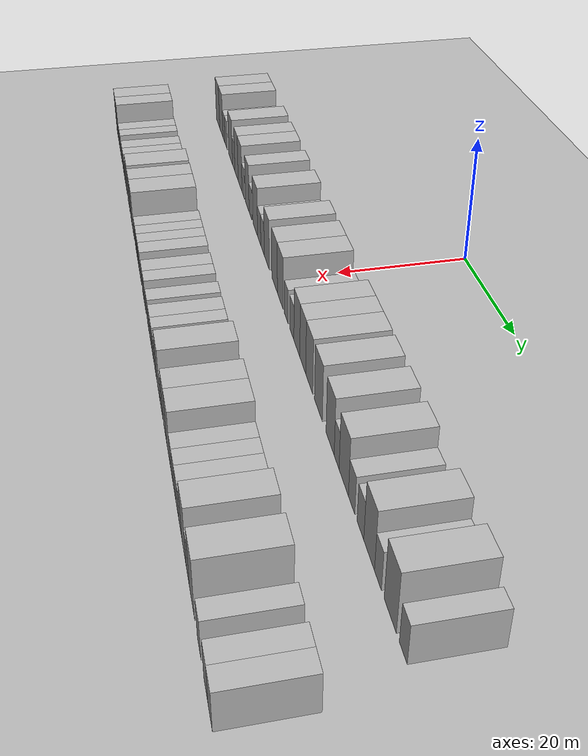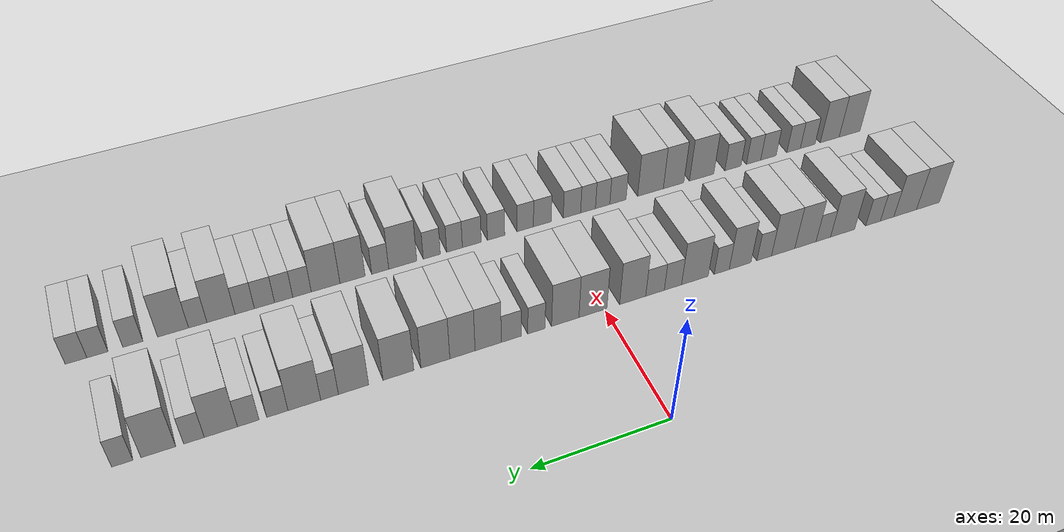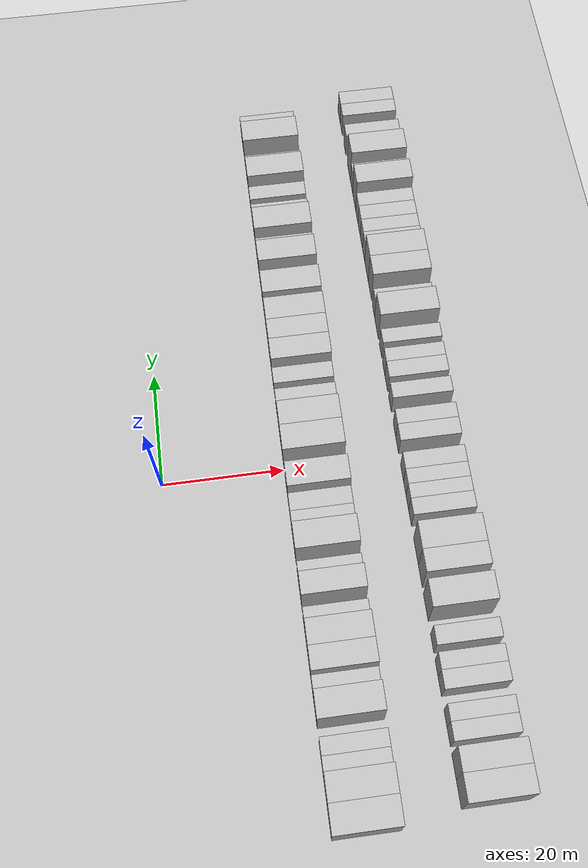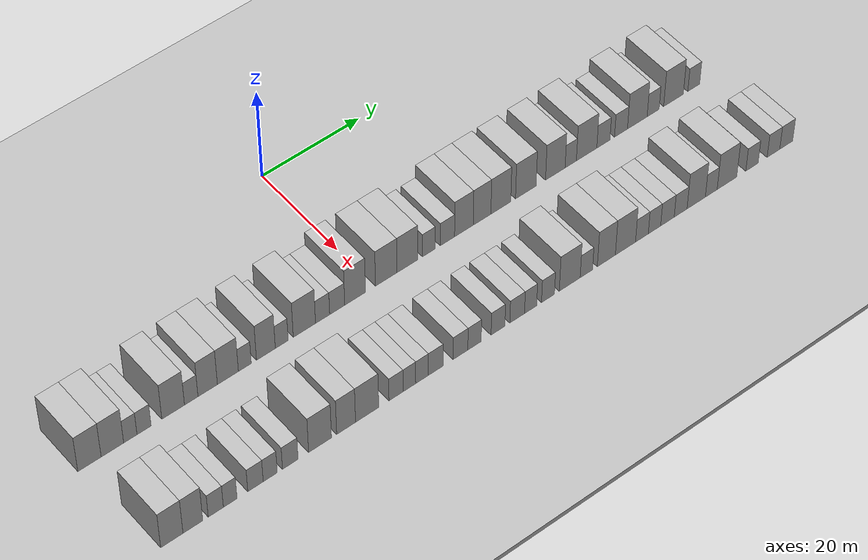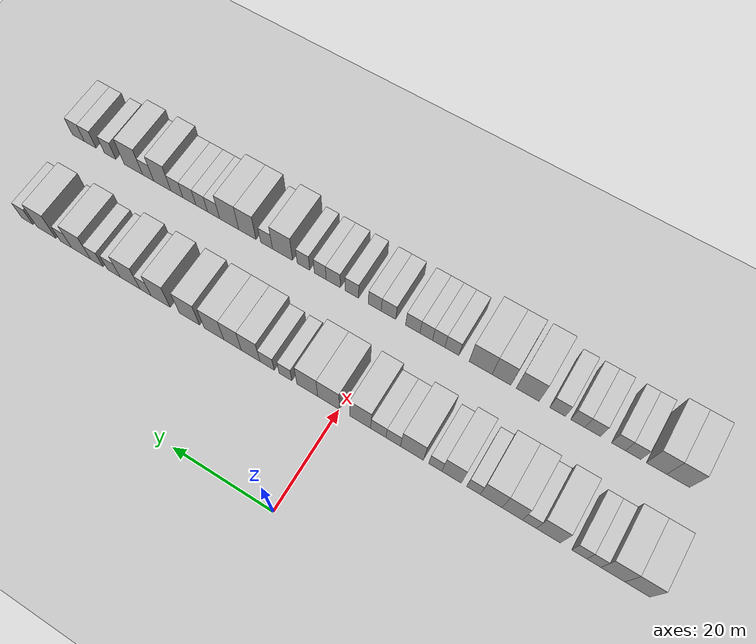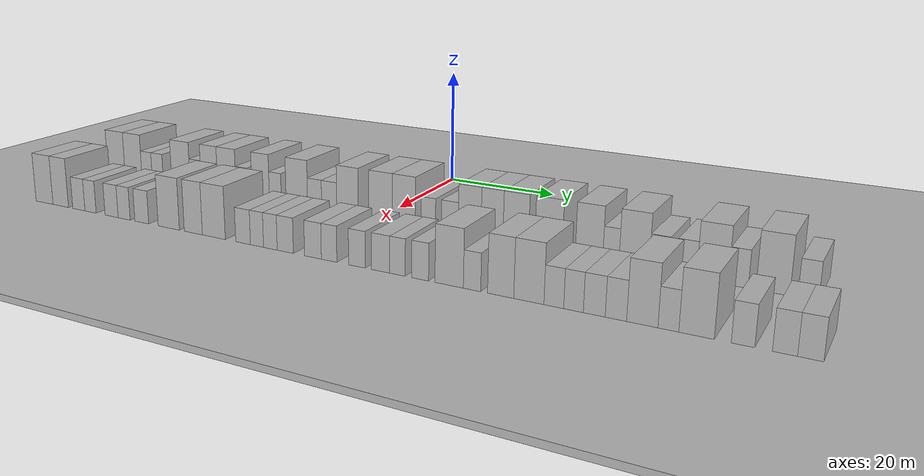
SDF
<sdf version="1.6">
 <world name="default">
  <include><name>ground_plane_1</name><uri>model://HANNAS_ground_plane</uri></include>
  <include>
   <name>ground_plane_2</name>
   <uri>model://HANNAS_ground_plane</uri>
   <pose>100 0 0  0 0 0</pose>
  </include>
  <model name="building_37">
   <static>1</static>
   <pose>25.0000 -54.9626 0 0.000000 0.000000 0.000000</pose>
   <link name="link">
    <pose>0 0 4.50 0 0 0</pose>
    <collision name="collision"><geometry><box><size>10.0000 4.2796 9.0000</size></box></geometry></collision>
    <visual name="visual">
     <cast_shadows>0</cast_shadows>
     <geometry><box><size>10.0000 4.2796 9.0000</size></box></geometry>
     <material>
      <script>
       <uri>model://HANNAS_wall/materials/scripts</uri>
       <uri>model://HANNAS_wall/materials/textures</uri>
       <name>vrc/HANNAS_wall</name>
      </script>
     </material>
    </visual>
   </link>
  </model>
  <model name="building_38">
   <static>1</static>
   <pose>25.0000 -50.7475 0 0.000000 0.000000 0.000000</pose>
   <link name="link">
    <pose>0 0 4.50 0 0 0</pose>
    <collision name="collision"><geometry><box><size>10.0000 4.1506 9.0000</size></box></geometry></collision>
    <visual name="visual">
     <cast_shadows>0</cast_shadows>
     <geometry><box><size>10.0000 4.1506 9.0000</size></box></geometry>
     <material>
      <script>
       <uri>model://HANNAS_wall/materials/scripts</uri>
       <uri>model://HANNAS_wall/materials/textures</uri>
       <name>vrc/HANNAS_wall</name>
      </script>
     </material>
    </visual>
   </link>
  </model>
  <model name="building_39">
   <static>1</static>
   <pose>25.0000 -47.4356 0 0.000000 0.000000 0.000000</pose>
   <link name="link">
    <pose>0 0 3.00 0 0 0</pose>
    <collision name="collision"><geometry><box><size>10.0000 2.4733 6.0000</size></box></geometry></collision>
    <visual name="visual">
     <cast_shadows>0</cast_shadows>
     <geometry><box><size>10.0000 2.4733 6.0000</size></box></geometry>
     <material>
      <script>
       <uri>model://HANNAS_wall/materials/scripts</uri>
       <uri>model://HANNAS_wall/materials/textures</uri>
       <name>vrc/HANNAS_wall</name>
      </script>
     </material>
    </visual>
   </link>
  </model>
  <model name="building_40">
   <static>1</static>
   <pose>25.0000 -44.8819 0 0.000000 0.000000 0.000000</pose>
   <link name="link">
    <pose>0 0 3.00 0 0 0</pose>
    <collision name="collision"><geometry><box><size>10.0000 2.6341 6.0000</size></box></geometry></collision>
    <visual name="visual">
     <cast_shadows>0</cast_shadows>
     <geometry><box><size>10.0000 2.6341 6.0000</size></box></geometry>
     <material>
      <script>
       <uri>model://HANNAS_wall/materials/scripts</uri>
       <uri>model://HANNAS_wall/materials/textures</uri>
       <name>vrc/HANNAS_wall</name>
      </script>
     </material>
    </visual>
   </link>
  </model>
  <model name="building_41">
   <static>1</static>
   <pose>25.0000 -39.4335 0 0.000000 0.000000 0.000000</pose>
   <link name="link">
    <pose>0 0 4.50 0 0 0</pose>
    <collision name="collision"><geometry><box><size>10.0000 4.2626 9.0000</size></box></geometry></collision>
    <visual name="visual">
     <cast_shadows>0</cast_shadows>
     <geometry><box><size>10.0000 4.2626 9.0000</size></box></geometry>
     <material>
      <script>
       <uri>model://HANNAS_wall/materials/scripts</uri>
       <uri>model://HANNAS_wall/materials/textures</uri>
       <name>vrc/HANNAS_wall</name>
      </script>
     </material>
    </visual>
   </link>
  </model>
  <model name="building_42">
   <static>1</static>
   <pose>25.0000 -36.0239 0 0.000000 0.000000 0.000000</pose>
   <link name="link">
    <pose>0 0 3.00 0 0 0</pose>
    <collision name="collision"><geometry><box><size>10.0000 2.5567 6.0000</size></box></geometry></collision>
    <visual name="visual">
     <cast_shadows>0</cast_shadows>
     <geometry><box><size>10.0000 2.5567 6.0000</size></box></geometry>
     <material>
      <script>
       <uri>model://HANNAS_wall/materials/scripts</uri>
       <uri>model://HANNAS_wall/materials/textures</uri>
       <name>vrc/HANNAS_wall</name>
      </script>
     </material>
    </visual>
   </link>
  </model>
  <model name="building_43">
   <static>1</static>
   <pose>25.0000 -32.8993 0 0.000000 0.000000 0.000000</pose>
   <link name="link">
    <pose>0 0 4.50 0 0 0</pose>
    <collision name="collision"><geometry><box><size>10.0000 3.6925 9.0000</size></box></geometry></collision>
    <visual name="visual">
     <cast_shadows>0</cast_shadows>
     <geometry><box><size>10.0000 3.6925 9.0000</size></box></geometry>
     <material>
      <script>
       <uri>model://HANNAS_wall/materials/scripts</uri>
       <uri>model://HANNAS_wall/materials/textures</uri>
       <name>vrc/HANNAS_wall</name>
      </script>
     </material>
    </visual>
   </link>
  </model>
  <model name="building_44">
   <static>1</static>
   <pose>25.0000 -29.0446 0 0.000000 0.000000 0.000000</pose>
   <link name="link">
    <pose>0 0 4.50 0 0 0</pose>
    <collision name="collision"><geometry><box><size>10.0000 4.0168 9.0000</size></box></geometry></collision>
    <visual name="visual">
     <cast_shadows>0</cast_shadows>
     <geometry><box><size>10.0000 4.0168 9.0000</size></box></geometry>
     <material>
      <script>
       <uri>model://HANNAS_wall/materials/scripts</uri>
       <uri>model://HANNAS_wall/materials/textures</uri>
       <name>vrc/HANNAS_wall</name>
      </script>
     </material>
    </visual>
   </link>
  </model>
  <model name="building_45">
   <static>1</static>
   <pose>25.0000 -25.7972 0 0.000000 0.000000 0.000000</pose>
   <link name="link">
    <pose>0 0 3.00 0 0 0</pose>
    <collision name="collision"><geometry><box><size>10.0000 2.4780 6.0000</size></box></geometry></collision>
    <visual name="visual">
     <cast_shadows>0</cast_shadows>
     <geometry><box><size>10.0000 2.4780 6.0000</size></box></geometry>
     <material>
      <script>
       <uri>model://HANNAS_wall/materials/scripts</uri>
       <uri>model://HANNAS_wall/materials/textures</uri>
       <name>vrc/HANNAS_wall</name>
      </script>
     </material>
    </visual>
   </link>
  </model>
  <model name="building_46">
   <static>1</static>
   <pose>25.0000 -21.7308 0 0.000000 0.000000 0.000000</pose>
   <link name="link">
    <pose>0 0 4.50 0 0 0</pose>
    <collision name="collision"><geometry><box><size>10.0000 3.6547 9.0000</size></box></geometry></collision>
    <visual name="visual">
     <cast_shadows>0</cast_shadows>
     <geometry><box><size>10.0000 3.6547 9.0000</size></box></geometry>
     <material>
      <script>
       <uri>model://HANNAS_wall/materials/scripts</uri>
       <uri>model://HANNAS_wall/materials/textures</uri>
       <name>vrc/HANNAS_wall</name>
      </script>
     </material>
    </visual>
   </link>
  </model>
  <model name="building_47">
   <static>1</static>
   <pose>25.0000 -18.6545 0 0.000000 0.000000 0.000000</pose>
   <link name="link">
    <pose>0 0 3.00 0 0 0</pose>
    <collision name="collision"><geometry><box><size>10.0000 2.4978 6.0000</size></box></geometry></collision>
    <visual name="visual">
     <cast_shadows>0</cast_shadows>
     <geometry><box><size>10.0000 2.4978 6.0000</size></box></geometry>
     <material>
      <script>
       <uri>model://HANNAS_wall/materials/scripts</uri>
       <uri>model://HANNAS_wall/materials/textures</uri>
       <name>vrc/HANNAS_wall</name>
      </script>
     </material>
    </visual>
   </link>
  </model>
  <model name="building_48">
   <static>1</static>
   <pose>25.0000 -14.2220 0 0.000000 0.000000 0.000000</pose>
   <link name="link">
    <pose>0 0 4.50 0 0 0</pose>
    <collision name="collision"><geometry><box><size>10.0000 4.3672 9.0000</size></box></geometry></collision>
    <visual name="visual">
     <cast_shadows>0</cast_shadows>
     <geometry><box><size>10.0000 4.3672 9.0000</size></box></geometry>
     <material>
      <script>
       <uri>model://HANNAS_wall/materials/scripts</uri>
       <uri>model://HANNAS_wall/materials/textures</uri>
       <name>vrc/HANNAS_wall</name>
      </script>
     </material>
    </visual>
   </link>
  </model>
  <model name="building_49">
   <static>1</static>
   <pose>25.0000 -10.6399 0 0.000000 0.000000 0.000000</pose>
   <link name="link">
    <pose>0 0 3.00 0 0 0</pose>
    <collision name="collision"><geometry><box><size>10.0000 2.7971 6.0000</size></box></geometry></collision>
    <visual name="visual">
     <cast_shadows>0</cast_shadows>
     <geometry><box><size>10.0000 2.7971 6.0000</size></box></geometry>
     <material>
      <script>
       <uri>model://HANNAS_wall/materials/scripts</uri>
       <uri>model://HANNAS_wall/materials/textures</uri>
       <name>vrc/HANNAS_wall</name>
      </script>
     </material>
    </visual>
   </link>
  </model>
  <model name="building_50">
   <static>1</static>
   <pose>25.0000 -7.7481 0 0.000000 0.000000 0.000000</pose>
   <link name="link">
    <pose>0 0 3.00 0 0 0</pose>
    <collision name="collision"><geometry><box><size>10.0000 2.9864 6.0000</size></box></geometry></collision>
    <visual name="visual">
     <cast_shadows>0</cast_shadows>
     <geometry><box><size>10.0000 2.9864 6.0000</size></box></geometry>
     <material>
      <script>
       <uri>model://HANNAS_wall/materials/scripts</uri>
       <uri>model://HANNAS_wall/materials/textures</uri>
       <name>vrc/HANNAS_wall</name>
      </script>
     </material>
    </visual>
   </link>
  </model>
  <model name="building_51">
   <static>1</static>
   <pose>25.0000 -4.1817 0 0.000000 0.000000 0.000000</pose>
   <link name="link">
    <pose>0 0 4.50 0 0 0</pose>
    <collision name="collision"><geometry><box><size>10.0000 4.1463 9.0000</size></box></geometry></collision>
    <visual name="visual">
     <cast_shadows>0</cast_shadows>
     <geometry><box><size>10.0000 4.1463 9.0000</size></box></geometry>
     <material>
      <script>
       <uri>model://HANNAS_wall/materials/scripts</uri>
       <uri>model://HANNAS_wall/materials/textures</uri>
       <name>vrc/HANNAS_wall</name>
      </script>
     </material>
    </visual>
   </link>
  </model>
  <model name="building_52">
   <static>1</static>
   <pose>25.0000 2.0636 0 0.000000 0.000000 0.000000</pose>
   <link name="link">
    <pose>0 0 4.50 0 0 0</pose>
    <collision name="collision"><geometry><box><size>10.0000 4.3444 9.0000</size></box></geometry></collision>
    <visual name="visual">
     <cast_shadows>0</cast_shadows>
     <geometry><box><size>10.0000 4.3444 9.0000</size></box></geometry>
     <material>
      <script>
       <uri>model://HANNAS_wall/materials/scripts</uri>
       <uri>model://HANNAS_wall/materials/textures</uri>
       <name>vrc/HANNAS_wall</name>
      </script>
     </material>
    </visual>
   </link>
  </model>
  <model name="building_53">
   <static>1</static>
   <pose>25.0000 6.3331 0 0.000000 0.000000 0.000000</pose>
   <link name="link">
    <pose>0 0 4.50 0 0 0</pose>
    <collision name="collision"><geometry><box><size>10.0000 4.1945 9.0000</size></box></geometry></collision>
    <visual name="visual">
     <cast_shadows>0</cast_shadows>
     <geometry><box><size>10.0000 4.1945 9.0000</size></box></geometry>
     <material>
      <script>
       <uri>model://HANNAS_wall/materials/scripts</uri>
       <uri>model://HANNAS_wall/materials/textures</uri>
       <name>vrc/HANNAS_wall</name>
      </script>
     </material>
    </visual>
   </link>
  </model>
  <model name="building_54">
   <static>1</static>
   <pose>25.0000 10.7338 0 0.000000 0.000000 0.000000</pose>
   <link name="link">
    <pose>0 0 3.00 0 0 0</pose>
    <collision name="collision"><geometry><box><size>10.0000 2.6070 6.0000</size></box></geometry></collision>
    <visual name="visual">
     <cast_shadows>0</cast_shadows>
     <geometry><box><size>10.0000 2.6070 6.0000</size></box></geometry>
     <material>
      <script>
       <uri>model://HANNAS_wall/materials/scripts</uri>
       <uri>model://HANNAS_wall/materials/textures</uri>
       <name>vrc/HANNAS_wall</name>
      </script>
     </material>
    </visual>
   </link>
  </model>
  <model name="building_55">
   <static>1</static>
   <pose>25.0000 14.5143 0 0.000000 0.000000 0.000000</pose>
   <link name="link">
    <pose>0 0 3.00 0 0 0</pose>
    <collision name="collision"><geometry><box><size>10.0000 2.9539 6.0000</size></box></geometry></collision>
    <visual name="visual">
     <cast_shadows>0</cast_shadows>
     <geometry><box><size>10.0000 2.9539 6.0000</size></box></geometry>
     <material>
      <script>
       <uri>model://HANNAS_wall/materials/scripts</uri>
       <uri>model://HANNAS_wall/materials/textures</uri>
       <name>vrc/HANNAS_wall</name>
      </script>
     </material>
    </visual>
   </link>
  </model>
  <model name="building_56">
   <static>1</static>
   <pose>25.0000 17.9239 0 0.000000 0.000000 0.000000</pose>
   <link name="link">
    <pose>0 0 4.50 0 0 0</pose>
    <collision name="collision"><geometry><box><size>10.0000 3.8653 9.0000</size></box></geometry></collision>
    <visual name="visual">
     <cast_shadows>0</cast_shadows>
     <geometry><box><size>10.0000 3.8653 9.0000</size></box></geometry>
     <material>
      <script>
       <uri>model://HANNAS_wall/materials/scripts</uri>
       <uri>model://HANNAS_wall/materials/textures</uri>
       <name>vrc/HANNAS_wall</name>
      </script>
     </material>
    </visual>
   </link>
  </model>
  <model name="building_57">
   <static>1</static>
   <pose>25.0000 21.6936 0 0.000000 0.000000 0.000000</pose>
   <link name="link">
    <pose>0 0 4.50 0 0 0</pose>
    <collision name="collision"><geometry><box><size>10.0000 3.6740 9.0000</size></box></geometry></collision>
    <visual name="visual">
     <cast_shadows>0</cast_shadows>
     <geometry><box><size>10.0000 3.6740 9.0000</size></box></geometry>
     <material>
      <script>
       <uri>model://HANNAS_wall/materials/scripts</uri>
       <uri>model://HANNAS_wall/materials/textures</uri>
       <name>vrc/HANNAS_wall</name>
      </script>
     </material>
    </visual>
   </link>
  </model>
  <model name="building_58">
   <static>1</static>
   <pose>25.0000 25.6109 0 0.000000 0.000000 0.000000</pose>
   <link name="link">
    <pose>0 0 4.50 0 0 0</pose>
    <collision name="collision"><geometry><box><size>10.0000 4.1607 9.0000</size></box></geometry></collision>
    <visual name="visual">
     <cast_shadows>0</cast_shadows>
     <geometry><box><size>10.0000 4.1607 9.0000</size></box></geometry>
     <material>
      <script>
       <uri>model://HANNAS_wall/materials/scripts</uri>
       <uri>model://HANNAS_wall/materials/textures</uri>
       <name>vrc/HANNAS_wall</name>
      </script>
     </material>
    </visual>
   </link>
  </model>
  <model name="building_59">
   <static>1</static>
   <pose>25.0000 30.8675 0 0.000000 0.000000 0.000000</pose>
   <link name="link">
    <pose>0 0 4.50 0 0 0</pose>
    <collision name="collision"><geometry><box><size>10.0000 4.3525 9.0000</size></box></geometry></collision>
    <visual name="visual">
     <cast_shadows>0</cast_shadows>
     <geometry><box><size>10.0000 4.3525 9.0000</size></box></geometry>
     <material>
      <script>
       <uri>model://HANNAS_wall/materials/scripts</uri>
       <uri>model://HANNAS_wall/materials/textures</uri>
       <name>vrc/HANNAS_wall</name>
      </script>
     </material>
    </visual>
   </link>
  </model>
  <model name="building_60">
   <static>1</static>
   <pose>25.0000 37.1327 0 0.000000 0.000000 0.000000</pose>
   <link name="link">
    <pose>0 0 4.50 0 0 0</pose>
    <collision name="collision"><geometry><box><size>10.0000 4.1779 9.0000</size></box></geometry></collision>
    <visual name="visual">
     <cast_shadows>0</cast_shadows>
     <geometry><box><size>10.0000 4.1779 9.0000</size></box></geometry>
     <material>
      <script>
       <uri>model://HANNAS_wall/materials/scripts</uri>
       <uri>model://HANNAS_wall/materials/textures</uri>
       <name>vrc/HANNAS_wall</name>
      </script>
     </material>
    </visual>
   </link>
  </model>
  <model name="building_61">
   <static>1</static>
   <pose>25.0000 40.4304 0 0.000000 0.000000 0.000000</pose>
   <link name="link">
    <pose>0 0 3.00 0 0 0</pose>
    <collision name="collision"><geometry><box><size>10.0000 2.4174 6.0000</size></box></geometry></collision>
    <visual name="visual">
     <cast_shadows>0</cast_shadows>
     <geometry><box><size>10.0000 2.4174 6.0000</size></box></geometry>
     <material>
      <script>
       <uri>model://HANNAS_wall/materials/scripts</uri>
       <uri>model://HANNAS_wall/materials/textures</uri>
       <name>vrc/HANNAS_wall</name>
      </script>
     </material>
    </visual>
   </link>
  </model>
  <model name="building_62">
   <static>1</static>
   <pose>25.0000 43.8453 0 0.000000 0.000000 0.000000</pose>
   <link name="link">
    <pose>0 0 4.50 0 0 0</pose>
    <collision name="collision"><geometry><box><size>10.0000 4.4126 9.0000</size></box></geometry></collision>
    <visual name="visual">
     <cast_shadows>0</cast_shadows>
     <geometry><box><size>10.0000 4.4126 9.0000</size></box></geometry>
     <material>
      <script>
       <uri>model://HANNAS_wall/materials/scripts</uri>
       <uri>model://HANNAS_wall/materials/textures</uri>
       <name>vrc/HANNAS_wall</name>
      </script>
     </material>
    </visual>
   </link>
  </model>
  <model name="building_63">
   <static>1</static>
   <pose>25.0000 47.4727 0 0.000000 0.000000 0.000000</pose>
   <link name="link">
    <pose>0 0 3.00 0 0 0</pose>
    <collision name="collision"><geometry><box><size>10.0000 2.8422 6.0000</size></box></geometry></collision>
    <visual name="visual">
     <cast_shadows>0</cast_shadows>
     <geometry><box><size>10.0000 2.8422 6.0000</size></box></geometry>
     <material>
      <script>
       <uri>model://HANNAS_wall/materials/scripts</uri>
       <uri>model://HANNAS_wall/materials/textures</uri>
       <name>vrc/HANNAS_wall</name>
      </script>
     </material>
    </visual>
   </link>
  </model>
  <model name="building_64">
   <static>1</static>
   <pose>25.0000 51.3111 0 0.000000 0.000000 0.000000</pose>
   <link name="link">
    <pose>0 0 3.00 0 0 0</pose>
    <collision name="collision"><geometry><box><size>10.0000 2.8345 6.0000</size></box></geometry></collision>
    <visual name="visual">
     <cast_shadows>0</cast_shadows>
     <geometry><box><size>10.0000 2.8345 6.0000</size></box></geometry>
     <material>
      <script>
       <uri>model://HANNAS_wall/materials/scripts</uri>
       <uri>model://HANNAS_wall/materials/textures</uri>
       <name>vrc/HANNAS_wall</name>
      </script>
     </material>
    </visual>
   </link>
  </model>
  <model name="building_65">
   <static>1</static>
   <pose>25.0000 54.8839 0 0.000000 0.000000 0.000000</pose>
   <link name="link">
    <pose>0 0 4.50 0 0 0</pose>
    <collision name="collision"><geometry><box><size>10.0000 4.3110 9.0000</size></box></geometry></collision>
    <visual name="visual">
     <cast_shadows>0</cast_shadows>
     <geometry><box><size>10.0000 4.3110 9.0000</size></box></geometry>
     <material>
      <script>
       <uri>model://HANNAS_wall/materials/scripts</uri>
       <uri>model://HANNAS_wall/materials/textures</uri>
       <name>vrc/HANNAS_wall</name>
      </script>
     </material>
    </visual>
   </link>
  </model>
  <model name="building_66">
   <static>1</static>
   <pose>25.0000 58.3631 0 0.000000 0.000000 0.000000</pose>
   <link name="link">
    <pose>0 0 3.00 0 0 0</pose>
    <collision name="collision"><geometry><box><size>10.0000 2.6475 6.0000</size></box></geometry></collision>
    <visual name="visual">
     <cast_shadows>0</cast_shadows>
     <geometry><box><size>10.0000 2.6475 6.0000</size></box></geometry>
     <material>
      <script>
       <uri>model://HANNAS_wall/materials/scripts</uri>
       <uri>model://HANNAS_wall/materials/textures</uri>
       <name>vrc/HANNAS_wall</name>
      </script>
     </material>
    </visual>
   </link>
  </model>
  <model name="building_67">
   <static>1</static>
   <pose>25.0000 62.8773 0 0.000000 0.000000 0.000000</pose>
   <link name="link">
    <pose>0 0 4.50 0 0 0</pose>
    <collision name="collision"><geometry><box><size>10.0000 4.3808 9.0000</size></box></geometry></collision>
    <visual name="visual">
     <cast_shadows>0</cast_shadows>
     <geometry><box><size>10.0000 4.3808 9.0000</size></box></geometry>
     <material>
      <script>
       <uri>model://HANNAS_wall/materials/scripts</uri>
       <uri>model://HANNAS_wall/materials/textures</uri>
       <name>vrc/HANNAS_wall</name>
      </script>
     </material>
    </visual>
   </link>
  </model>
  <model name="building_68">
   <static>1</static>
   <pose>25.0000 67.3894 0 0.000000 0.000000 0.000000</pose>
   <link name="link">
    <pose>0 0 3.00 0 0 0</pose>
    <collision name="collision"><geometry><box><size>10.0000 2.6434 6.0000</size></box></geometry></collision>
    <visual name="visual">
     <cast_shadows>0</cast_shadows>
     <geometry><box><size>10.0000 2.6434 6.0000</size></box></geometry>
     <material>
      <script>
       <uri>model://HANNAS_wall/materials/scripts</uri>
       <uri>model://HANNAS_wall/materials/textures</uri>
       <name>vrc/HANNAS_wall</name>
      </script>
     </material>
    </visual>
   </link>
  </model>
  <model name="building_135">
   <static>1</static>
   <pose>44.0000 -53.3962 0 0.000000 0.000000 0.000000</pose>
   <link name="link">
    <pose>0 0 4.50 0 0 0</pose>
    <collision name="collision"><geometry><box><size>10.0000 4.0577 9.0000</size></box></geometry></collision>
    <visual name="visual">
     <cast_shadows>0</cast_shadows>
     <geometry><box><size>10.0000 4.0577 9.0000</size></box></geometry>
     <material>
      <script>
       <uri>model://HANNAS_wall/materials/scripts</uri>
       <uri>model://HANNAS_wall/materials/textures</uri>
       <name>vrc/HANNAS_wall</name>
      </script>
     </material>
    </visual>
   </link>
  </model>
  <model name="building_136">
   <static>1</static>
   <pose>44.0000 -49.5515 0 0.000000 0.000000 0.000000</pose>
   <link name="link">
    <pose>0 0 4.50 0 0 0</pose>
    <collision name="collision"><geometry><box><size>10.0000 3.6317 9.0000</size></box></geometry></collision>
    <visual name="visual">
     <cast_shadows>0</cast_shadows>
     <geometry><box><size>10.0000 3.6317 9.0000</size></box></geometry>
     <material>
      <script>
       <uri>model://HANNAS_wall/materials/scripts</uri>
       <uri>model://HANNAS_wall/materials/textures</uri>
       <name>vrc/HANNAS_wall</name>
      </script>
     </material>
    </visual>
   </link>
  </model>
  <model name="building_137">
   <static>1</static>
   <pose>44.0000 -45.3373 0 0.000000 0.000000 0.000000</pose>
   <link name="link">
    <pose>0 0 3.00 0 0 0</pose>
    <collision name="collision"><geometry><box><size>10.0000 2.7967 6.0000</size></box></geometry></collision>
    <visual name="visual">
     <cast_shadows>0</cast_shadows>
     <geometry><box><size>10.0000 2.7967 6.0000</size></box></geometry>
     <material>
      <script>
       <uri>model://HANNAS_wall/materials/scripts</uri>
       <uri>model://HANNAS_wall/materials/textures</uri>
       <name>vrc/HANNAS_wall</name>
      </script>
     </material>
    </visual>
   </link>
  </model>
  <model name="building_138">
   <static>1</static>
   <pose>44.0000 -42.6727 0 0.000000 0.000000 0.000000</pose>
   <link name="link">
    <pose>0 0 3.00 0 0 0</pose>
    <collision name="collision"><geometry><box><size>10.0000 2.5325 6.0000</size></box></geometry></collision>
    <visual name="visual">
     <cast_shadows>0</cast_shadows>
     <geometry><box><size>10.0000 2.5325 6.0000</size></box></geometry>
     <material>
      <script>
       <uri>model://HANNAS_wall/materials/scripts</uri>
       <uri>model://HANNAS_wall/materials/textures</uri>
       <name>vrc/HANNAS_wall</name>
      </script>
     </material>
    </visual>
   </link>
  </model>
  <model name="building_139">
   <static>1</static>
   <pose>44.0000 -37.9660 0 0.000000 0.000000 0.000000</pose>
   <link name="link">
    <pose>0 0 3.00 0 0 0</pose>
    <collision name="collision"><geometry><box><size>10.0000 2.8809 6.0000</size></box></geometry></collision>
    <visual name="visual">
     <cast_shadows>0</cast_shadows>
     <geometry><box><size>10.0000 2.8809 6.0000</size></box></geometry>
     <material>
      <script>
       <uri>model://HANNAS_wall/materials/scripts</uri>
       <uri>model://HANNAS_wall/materials/textures</uri>
       <name>vrc/HANNAS_wall</name>
      </script>
     </material>
    </visual>
   </link>
  </model>
  <model name="building_140">
   <static>1</static>
   <pose>44.0000 -35.2119 0 0.000000 0.000000 0.000000</pose>
   <link name="link">
    <pose>0 0 3.00 0 0 0</pose>
    <collision name="collision"><geometry><box><size>10.0000 2.6272 6.0000</size></box></geometry></collision>
    <visual name="visual">
     <cast_shadows>0</cast_shadows>
     <geometry><box><size>10.0000 2.6272 6.0000</size></box></geometry>
     <material>
      <script>
       <uri>model://HANNAS_wall/materials/scripts</uri>
       <uri>model://HANNAS_wall/materials/textures</uri>
       <name>vrc/HANNAS_wall</name>
      </script>
     </material>
    </visual>
   </link>
  </model>
  <model name="building_141">
   <static>1</static>
   <pose>44.0000 -31.4220 0 0.000000 0.000000 0.000000</pose>
   <link name="link">
    <pose>0 0 3.00 0 0 0</pose>
    <collision name="collision"><geometry><box><size>10.0000 2.9527 6.0000</size></box></geometry></collision>
    <visual name="visual">
     <cast_shadows>0</cast_shadows>
     <geometry><box><size>10.0000 2.9527 6.0000</size></box></geometry>
     <material>
      <script>
       <uri>model://HANNAS_wall/materials/scripts</uri>
       <uri>model://HANNAS_wall/materials/textures</uri>
       <name>vrc/HANNAS_wall</name>
      </script>
     </material>
    </visual>
   </link>
  </model>
  <model name="building_142">
   <static>1</static>
   <pose>44.0000 -25.7606 0 0.000000 0.000000 0.000000</pose>
   <link name="link">
    <pose>0 0 4.50 0 0 0</pose>
    <collision name="collision"><geometry><box><size>10.0000 4.3701 9.0000</size></box></geometry></collision>
    <visual name="visual">
     <cast_shadows>0</cast_shadows>
     <geometry><box><size>10.0000 4.3701 9.0000</size></box></geometry>
     <material>
      <script>
       <uri>model://HANNAS_wall/materials/scripts</uri>
       <uri>model://HANNAS_wall/materials/textures</uri>
       <name>vrc/HANNAS_wall</name>
      </script>
     </material>
    </visual>
   </link>
  </model>
  <model name="building_143">
   <static>1</static>
   <pose>44.0000 -20.7616 0 0.000000 0.000000 0.000000</pose>
   <link name="link">
    <pose>0 0 4.50 0 0 0</pose>
    <collision name="collision"><geometry><box><size>10.0000 3.6278 9.0000</size></box></geometry></collision>
    <visual name="visual">
     <cast_shadows>0</cast_shadows>
     <geometry><box><size>10.0000 3.6278 9.0000</size></box></geometry>
     <material>
      <script>
       <uri>model://HANNAS_wall/materials/scripts</uri>
       <uri>model://HANNAS_wall/materials/textures</uri>
       <name>vrc/HANNAS_wall</name>
      </script>
     </material>
    </visual>
   </link>
  </model>
  <model name="building_144">
   <static>1</static>
   <pose>44.0000 -16.6998 0 0.000000 0.000000 0.000000</pose>
   <link name="link">
    <pose>0 0 4.50 0 0 0</pose>
    <collision name="collision"><geometry><box><size>10.0000 4.4959 9.0000</size></box></geometry></collision>
    <visual name="visual">
     <cast_shadows>0</cast_shadows>
     <geometry><box><size>10.0000 4.4959 9.0000</size></box></geometry>
     <material>
      <script>
       <uri>model://HANNAS_wall/materials/scripts</uri>
       <uri>model://HANNAS_wall/materials/textures</uri>
       <name>vrc/HANNAS_wall</name>
      </script>
     </material>
    </visual>
   </link>
  </model>
  <model name="building_145">
   <static>1</static>
   <pose>44.0000 -11.0547 0 0.000000 0.000000 0.000000</pose>
   <link name="link">
    <pose>0 0 3.00 0 0 0</pose>
    <collision name="collision"><geometry><box><size>10.0000 2.7941 6.0000</size></box></geometry></collision>
    <visual name="visual">
     <cast_shadows>0</cast_shadows>
     <geometry><box><size>10.0000 2.7941 6.0000</size></box></geometry>
     <material>
      <script>
       <uri>model://HANNAS_wall/materials/scripts</uri>
       <uri>model://HANNAS_wall/materials/textures</uri>
       <name>vrc/HANNAS_wall</name>
      </script>
     </material>
    </visual>
   </link>
  </model>
  <model name="building_146">
   <static>1</static>
   <pose>44.0000 -8.4339 0 0.000000 0.000000 0.000000</pose>
   <link name="link">
    <pose>0 0 3.00 0 0 0</pose>
    <collision name="collision"><geometry><box><size>10.0000 2.4477 6.0000</size></box></geometry></collision>
    <visual name="visual">
     <cast_shadows>0</cast_shadows>
     <geometry><box><size>10.0000 2.4477 6.0000</size></box></geometry>
     <material>
      <script>
       <uri>model://HANNAS_wall/materials/scripts</uri>
       <uri>model://HANNAS_wall/materials/textures</uri>
       <name>vrc/HANNAS_wall</name>
      </script>
     </material>
    </visual>
   </link>
  </model>
  <model name="building_147">
   <static>1</static>
   <pose>44.0000 -5.9509 0 0.000000 0.000000 0.000000</pose>
   <link name="link">
    <pose>0 0 3.00 0 0 0</pose>
    <collision name="collision"><geometry><box><size>10.0000 2.5182 6.0000</size></box></geometry></collision>
    <visual name="visual">
     <cast_shadows>0</cast_shadows>
     <geometry><box><size>10.0000 2.5182 6.0000</size></box></geometry>
     <material>
      <script>
       <uri>model://HANNAS_wall/materials/scripts</uri>
       <uri>model://HANNAS_wall/materials/textures</uri>
       <name>vrc/HANNAS_wall</name>
      </script>
     </material>
    </visual>
   </link>
  </model>
  <model name="building_148">
   <static>1</static>
   <pose>44.0000 -3.2376 0 0.000000 0.000000 0.000000</pose>
   <link name="link">
    <pose>0 0 3.00 0 0 0</pose>
    <collision name="collision"><geometry><box><size>10.0000 2.9083 6.0000</size></box></geometry></collision>
    <visual name="visual">
     <cast_shadows>0</cast_shadows>
     <geometry><box><size>10.0000 2.9083 6.0000</size></box></geometry>
     <material>
      <script>
       <uri>model://HANNAS_wall/materials/scripts</uri>
       <uri>model://HANNAS_wall/materials/textures</uri>
       <name>vrc/HANNAS_wall</name>
      </script>
     </material>
    </visual>
   </link>
  </model>
  <model name="building_149">
   <static>1</static>
   <pose>44.0000 1.6909 0 0.000000 0.000000 0.000000</pose>
   <link name="link">
    <pose>0 0 3.00 0 0 0</pose>
    <collision name="collision"><geometry><box><size>10.0000 2.9487 6.0000</size></box></geometry></collision>
    <visual name="visual">
     <cast_shadows>0</cast_shadows>
     <geometry><box><size>10.0000 2.9487 6.0000</size></box></geometry>
     <material>
      <script>
       <uri>model://HANNAS_wall/materials/scripts</uri>
       <uri>model://HANNAS_wall/materials/textures</uri>
       <name>vrc/HANNAS_wall</name>
      </script>
     </material>
    </visual>
   </link>
  </model>
  <model name="building_150">
   <static>1</static>
   <pose>44.0000 4.5059 0 0.000000 0.000000 0.000000</pose>
   <link name="link">
    <pose>0 0 3.00 0 0 0</pose>
    <collision name="collision"><geometry><box><size>10.0000 2.6813 6.0000</size></box></geometry></collision>
    <visual name="visual">
     <cast_shadows>0</cast_shadows>
     <geometry><box><size>10.0000 2.6813 6.0000</size></box></geometry>
     <material>
      <script>
       <uri>model://HANNAS_wall/materials/scripts</uri>
       <uri>model://HANNAS_wall/materials/textures</uri>
       <name>vrc/HANNAS_wall</name>
      </script>
     </material>
    </visual>
   </link>
  </model>
  <model name="building_151">
   <static>1</static>
   <pose>44.0000 9.2475 0 0.000000 0.000000 0.000000</pose>
   <link name="link">
    <pose>0 0 3.00 0 0 0</pose>
    <collision name="collision"><geometry><box><size>10.0000 2.8018 6.0000</size></box></geometry></collision>
    <visual name="visual">
     <cast_shadows>0</cast_shadows>
     <geometry><box><size>10.0000 2.8018 6.0000</size></box></geometry>
     <material>
      <script>
       <uri>model://HANNAS_wall/materials/scripts</uri>
       <uri>model://HANNAS_wall/materials/textures</uri>
       <name>vrc/HANNAS_wall</name>
      </script>
     </material>
    </visual>
   </link>
  </model>
  <model name="building_152">
   <static>1</static>
   <pose>44.0000 13.1479 0 0.000000 0.000000 0.000000</pose>
   <link name="link">
    <pose>0 0 3.00 0 0 0</pose>
    <collision name="collision"><geometry><box><size>10.0000 2.9990 6.0000</size></box></geometry></collision>
    <visual name="visual">
     <cast_shadows>0</cast_shadows>
     <geometry><box><size>10.0000 2.9990 6.0000</size></box></geometry>
     <material>
      <script>
       <uri>model://HANNAS_wall/materials/scripts</uri>
       <uri>model://HANNAS_wall/materials/textures</uri>
       <name>vrc/HANNAS_wall</name>
      </script>
     </material>
    </visual>
   </link>
  </model>
  <model name="building_153">
   <static>1</static>
   <pose>44.0000 15.8893 0 0.000000 0.000000 0.000000</pose>
   <link name="link">
    <pose>0 0 3.00 0 0 0</pose>
    <collision name="collision"><geometry><box><size>10.0000 2.4839 6.0000</size></box></geometry></collision>
    <visual name="visual">
     <cast_shadows>0</cast_shadows>
     <geometry><box><size>10.0000 2.4839 6.0000</size></box></geometry>
     <material>
      <script>
       <uri>model://HANNAS_wall/materials/scripts</uri>
       <uri>model://HANNAS_wall/materials/textures</uri>
       <name>vrc/HANNAS_wall</name>
      </script>
     </material>
    </visual>
   </link>
  </model>
  <model name="building_154">
   <static>1</static>
   <pose>44.0000 19.4654 0 0.000000 0.000000 0.000000</pose>
   <link name="link">
    <pose>0 0 3.00 0 0 0</pose>
    <collision name="collision"><geometry><box><size>10.0000 2.6682 6.0000</size></box></geometry></collision>
    <visual name="visual">
     <cast_shadows>0</cast_shadows>
     <geometry><box><size>10.0000 2.6682 6.0000</size></box></geometry>
     <material>
      <script>
       <uri>model://HANNAS_wall/materials/scripts</uri>
       <uri>model://HANNAS_wall/materials/textures</uri>
       <name>vrc/HANNAS_wall</name>
      </script>
     </material>
    </visual>
   </link>
  </model>
  <model name="building_155">
   <static>1</static>
   <pose>44.0000 23.9635 0 0.000000 0.000000 0.000000</pose>
   <link name="link">
    <pose>0 0 4.50 0 0 0</pose>
    <collision name="collision"><geometry><box><size>10.0000 4.3279 9.0000</size></box></geometry></collision>
    <visual name="visual">
     <cast_shadows>0</cast_shadows>
     <geometry><box><size>10.0000 4.3279 9.0000</size></box></geometry>
     <material>
      <script>
       <uri>model://HANNAS_wall/materials/scripts</uri>
       <uri>model://HANNAS_wall/materials/textures</uri>
       <name>vrc/HANNAS_wall</name>
      </script>
     </material>
    </visual>
   </link>
  </model>
  <model name="building_156">
   <static>1</static>
   <pose>44.0000 27.4226 0 0.000000 0.000000 0.000000</pose>
   <link name="link">
    <pose>0 0 3.00 0 0 0</pose>
    <collision name="collision"><geometry><box><size>10.0000 2.5904 6.0000</size></box></geometry></collision>
    <visual name="visual">
     <cast_shadows>0</cast_shadows>
     <geometry><box><size>10.0000 2.5904 6.0000</size></box></geometry>
     <material>
      <script>
       <uri>model://HANNAS_wall/materials/scripts</uri>
       <uri>model://HANNAS_wall/materials/textures</uri>
       <name>vrc/HANNAS_wall</name>
      </script>
     </material>
    </visual>
   </link>
  </model>
  <model name="building_157">
   <static>1</static>
   <pose>44.0000 31.6159 0 0.000000 0.000000 0.000000</pose>
   <link name="link">
    <pose>0 0 4.50 0 0 0</pose>
    <collision name="collision"><geometry><box><size>10.0000 3.7962 9.0000</size></box></geometry></collision>
    <visual name="visual">
     <cast_shadows>0</cast_shadows>
     <geometry><box><size>10.0000 3.7962 9.0000</size></box></geometry>
     <material>
      <script>
       <uri>model://HANNAS_wall/materials/scripts</uri>
       <uri>model://HANNAS_wall/materials/textures</uri>
       <name>vrc/HANNAS_wall</name>
      </script>
     </material>
    </visual>
   </link>
  </model>
  <model name="building_158">
   <static>1</static>
   <pose>44.0000 35.6457 0 0.000000 0.000000 0.000000</pose>
   <link name="link">
    <pose>0 0 4.50 0 0 0</pose>
    <collision name="collision"><geometry><box><size>10.0000 4.2634 9.0000</size></box></geometry></collision>
    <visual name="visual">
     <cast_shadows>0</cast_shadows>
     <geometry><box><size>10.0000 4.2634 9.0000</size></box></geometry>
     <material>
      <script>
       <uri>model://HANNAS_wall/materials/scripts</uri>
       <uri>model://HANNAS_wall/materials/textures</uri>
       <name>vrc/HANNAS_wall</name>
      </script>
     </material>
    </visual>
   </link>
  </model>
  <model name="building_159">
   <static>1</static>
   <pose>44.0000 39.1361 0 0.000000 0.000000 0.000000</pose>
   <link name="link">
    <pose>0 0 3.00 0 0 0</pose>
    <collision name="collision"><geometry><box><size>10.0000 2.7172 6.0000</size></box></geometry></collision>
    <visual name="visual">
     <cast_shadows>0</cast_shadows>
     <geometry><box><size>10.0000 2.7172 6.0000</size></box></geometry>
     <material>
      <script>
       <uri>model://HANNAS_wall/materials/scripts</uri>
       <uri>model://HANNAS_wall/materials/textures</uri>
       <name>vrc/HANNAS_wall</name>
      </script>
     </material>
    </visual>
   </link>
  </model>
  <model name="building_160">
   <static>1</static>
   <pose>44.0000 41.8202 0 0.000000 0.000000 0.000000</pose>
   <link name="link">
    <pose>0 0 3.00 0 0 0</pose>
    <collision name="collision"><geometry><box><size>10.0000 2.6512 6.0000</size></box></geometry></collision>
    <visual name="visual">
     <cast_shadows>0</cast_shadows>
     <geometry><box><size>10.0000 2.6512 6.0000</size></box></geometry>
     <material>
      <script>
       <uri>model://HANNAS_wall/materials/scripts</uri>
       <uri>model://HANNAS_wall/materials/textures</uri>
       <name>vrc/HANNAS_wall</name>
      </script>
     </material>
    </visual>
   </link>
  </model>
  <model name="building_161">
   <static>1</static>
   <pose>44.0000 44.5978 0 0.000000 0.000000 0.000000</pose>
   <link name="link">
    <pose>0 0 3.00 0 0 0</pose>
    <collision name="collision"><geometry><box><size>10.0000 2.9040 6.0000</size></box></geometry></collision>
    <visual name="visual">
     <cast_shadows>0</cast_shadows>
     <geometry><box><size>10.0000 2.9040 6.0000</size></box></geometry>
     <material>
      <script>
       <uri>model://HANNAS_wall/materials/scripts</uri>
       <uri>model://HANNAS_wall/materials/textures</uri>
       <name>vrc/HANNAS_wall</name>
      </script>
     </material>
    </visual>
   </link>
  </model>
  <model name="building_162">
   <static>1</static>
   <pose>44.0000 47.4368 0 0.000000 0.000000 0.000000</pose>
   <link name="link">
    <pose>0 0 3.00 0 0 0</pose>
    <collision name="collision"><geometry><box><size>10.0000 2.7739 6.0000</size></box></geometry></collision>
    <visual name="visual">
     <cast_shadows>0</cast_shadows>
     <geometry><box><size>10.0000 2.7739 6.0000</size></box></geometry>
     <material>
      <script>
       <uri>model://HANNAS_wall/materials/scripts</uri>
       <uri>model://HANNAS_wall/materials/textures</uri>
       <name>vrc/HANNAS_wall</name>
      </script>
     </material>
    </visual>
   </link>
  </model>
  <model name="building_163">
   <static>1</static>
   <pose>44.0000 50.8080 0 0.000000 0.000000 0.000000</pose>
   <link name="link">
    <pose>0 0 4.50 0 0 0</pose>
    <collision name="collision"><geometry><box><size>10.0000 3.9685 9.0000</size></box></geometry></collision>
    <visual name="visual">
     <cast_shadows>0</cast_shadows>
     <geometry><box><size>10.0000 3.9685 9.0000</size></box></geometry>
     <material>
      <script>
       <uri>model://HANNAS_wall/materials/scripts</uri>
       <uri>model://HANNAS_wall/materials/textures</uri>
       <name>vrc/HANNAS_wall</name>
      </script>
     </material>
    </visual>
   </link>
  </model>
  <model name="building_164">
   <static>1</static>
   <pose>44.0000 54.0824 0 0.000000 0.000000 0.000000</pose>
   <link name="link">
    <pose>0 0 3.00 0 0 0</pose>
    <collision name="collision"><geometry><box><size>10.0000 2.5804 6.0000</size></box></geometry></collision>
    <visual name="visual">
     <cast_shadows>0</cast_shadows>
     <geometry><box><size>10.0000 2.5804 6.0000</size></box></geometry>
     <material>
      <script>
       <uri>model://HANNAS_wall/materials/scripts</uri>
       <uri>model://HANNAS_wall/materials/textures</uri>
       <name>vrc/HANNAS_wall</name>
      </script>
     </material>
    </visual>
   </link>
  </model>
  <model name="building_165">
   <static>1</static>
   <pose>44.0000 57.5158 0 0.000000 0.000000 0.000000</pose>
   <link name="link">
    <pose>0 0 4.50 0 0 0</pose>
    <collision name="collision"><geometry><box><size>10.0000 4.2864 9.0000</size></box></geometry></collision>
    <visual name="visual">
     <cast_shadows>0</cast_shadows>
     <geometry><box><size>10.0000 4.2864 9.0000</size></box></geometry>
     <material>
      <script>
       <uri>model://HANNAS_wall/materials/scripts</uri>
       <uri>model://HANNAS_wall/materials/textures</uri>
       <name>vrc/HANNAS_wall</name>
      </script>
     </material>
    </visual>
   </link>
  </model>
  <model name="building_166">
   <static>1</static>
   <pose>44.0000 63.0235 0 0.000000 0.000000 0.000000</pose>
   <link name="link">
    <pose>0 0 3.00 0 0 0</pose>
    <collision name="collision"><geometry><box><size>10.0000 2.7288 6.0000</size></box></geometry></collision>
    <visual name="visual">
     <cast_shadows>0</cast_shadows>
     <geometry><box><size>10.0000 2.7288 6.0000</size></box></geometry>
     <material>
      <script>
       <uri>model://HANNAS_wall/materials/scripts</uri>
       <uri>model://HANNAS_wall/materials/textures</uri>
       <name>vrc/HANNAS_wall</name>
      </script>
     </material>
    </visual>
   </link>
  </model>
  <model name="building_167">
   <static>1</static>
   <pose>44.0000 67.7958 0 0.000000 0.000000 0.000000</pose>
   <link name="link">
    <pose>0 0 3.00 0 0 0</pose>
    <collision name="collision"><geometry><box><size>10.0000 2.8159 6.0000</size></box></geometry></collision>
    <visual name="visual">
     <cast_shadows>0</cast_shadows>
     <geometry><box><size>10.0000 2.8159 6.0000</size></box></geometry>
     <material>
      <script>
       <uri>model://HANNAS_wall/materials/scripts</uri>
       <uri>model://HANNAS_wall/materials/textures</uri>
       <name>vrc/HANNAS_wall</name>
      </script>
     </material>
    </visual>
   </link>
  </model>
  <model name="building_168">
   <static>1</static>
   <pose>44.0000 70.6451 0 0.000000 0.000000 0.000000</pose>
   <link name="link">
    <pose>0 0 3.00 0 0 0</pose>
    <collision name="collision"><geometry><box><size>10.0000 2.8827 6.0000</size></box></geometry></collision>
    <visual name="visual">
     <cast_shadows>0</cast_shadows>
     <geometry><box><size>10.0000 2.8827 6.0000</size></box></geometry>
     <material>
      <script>
       <uri>model://HANNAS_wall/materials/scripts</uri>
       <uri>model://HANNAS_wall/materials/textures</uri>
       <name>vrc/HANNAS_wall</name>
      </script>
     </material>
    </visual>
   </link>
  </model>
 </world>
</sdf>
